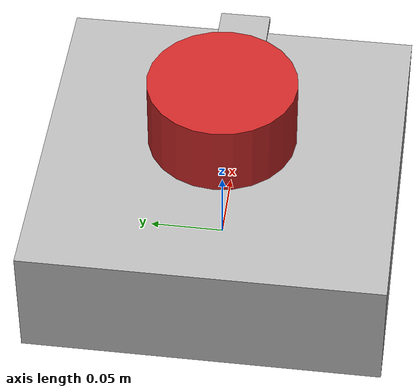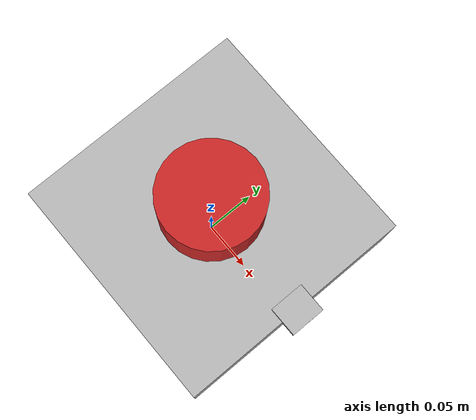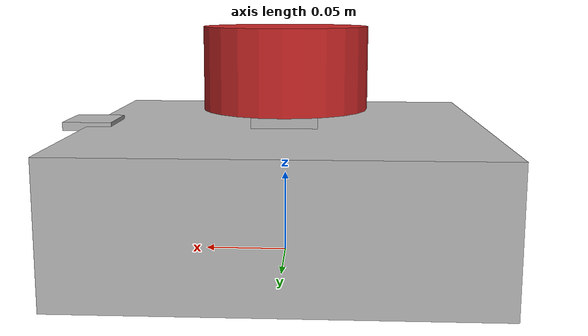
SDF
<sdf version='1.7'>
  <model name='roboto'>
    <link name='base_link'>
      <inertial>
        <pose>0 -0 0.035318 0 -0 0</pose>
        <mass>2.58365</mass>
        <inertia>
          <ixx>0.0216867</ixx>
          <ixy>-3.8231e-34</ixy>
          <ixz>1.33564e-18</ixz>
          <iyy>0.0216867</iyy>
          <iyz>6.22731e-19</iyz>
          <izz>0.0287115</izz>
        </inertia>
      </inertial>
      <collision name='base_link_fixed_joint_lump__body_collision'>
        <pose>0 0 0.04015 0 -0 0</pose>
        <geometry>
          <box>
            <size>0.24 0.24 0.0803</size>
          </box>
        </geometry>
      </collision>
      <collision name='base_link_fixed_joint_lump__front_collision_1'>
        <pose>0.12 0 0.0803 0 -0 0</pose>
        <geometry>
          <box>
            <size>0.03 0.035 0.005</size>
          </box>
        </geometry>
      </collision>
      <collision name='base_link_fixed_joint_lump__support_collision_2'>
        <pose>0 0 0.0803 0 -0 0</pose>
        <geometry>
          <box>
            <size>0.04 0.04 0.02</size>
          </box>
        </geometry>
      </collision>
      <collision name='base_link_fixed_joint_lump__lidar_collision_3'>
        <pose>0 0 0.1153 0 -0 0</pose>
        <geometry>
          <cylinder>
            <length>0.05</length>
            <radius>0.05</radius>
          </cylinder>
        </geometry>
        <surface>
          <contact>
            <ode/>
          </contact>
          <friction>
            <ode/>
          </friction>
        </surface>
      </collision>
      <visual name='base_link_fixed_joint_lump__body_visual'>
        <pose>0 0 0.04015 0 -0 0</pose>
        <geometry>
          <box>
            <size>0.24 0.24 0.0803</size>
          </box>
        </geometry>
      </visual>
      <visual name='base_link_fixed_joint_lump__front_visual_1'>
        <pose>0.12 0 0.0803 0 -0 0</pose>
        <geometry>
          <box>
            <size>0.03 0.035 0.005</size>
          </box>
        </geometry>
      </visual>
      <visual name='base_link_fixed_joint_lump__support_visual_2'>
        <pose>0 0 0.0903 0 -0 0</pose>
        <geometry>
          <box>
            <size>0.04 0.04 0.02</size>
          </box>
        </geometry>
      </visual>
      <visual name='base_link_fixed_joint_lump__lidar_visual_3'>
        <pose>0 0 0.1153 0 -0 0</pose>
        <geometry>
          <cylinder>
            <length>0.05</length>
            <radius>0.05</radius>
          </cylinder>
        </geometry>
        <material>
          <script>
            <name>Gazebo/Red</name>
            <uri>file://media/materials/scripts/gazebo.material</uri>
          </script>
        </material>
      </visual>
      <sensor name='laser' type='ray'>
        <visualize>0</visualize>
        <update_rate>10</update_rate>
        <ray>
          <scan>
            <horizontal>
              <samples>360</samples>
              <min_angle>-3.14</min_angle>
              <max_angle>3.14</max_angle>
              <resolution>1</resolution>
            </horizontal>
          </scan>
          <range>
            <min>0.3</min>
            <max>10</max>
          </range>
        </ray>
        <plugin name='laser_controller' filename='libgazebo_ros_ray_sensor.so'>
          <ros>
            <argument>~/out:=scan</argument>
          </ros>
          <output_type>sensor_msgs/LaserScan</output_type>
          <frame_name>lidar</frame_name>
        </plugin>
        <pose>0 0 0.1003 0 -0 0</pose>
      </sensor>
    </link>
    <joint name='wheel_1_joint' type='revolute'>
      <pose relative_to='base_link'>0.135 -0.135 0.015 0 0 -2.35619</pose>
      <parent>base_link</parent>
      <child>wheel_1_link</child>
      <axis>
        <xyz>0 1 0</xyz>
        <limit>
          <effort>100</effort>
          <velocity>100</velocity>
          <lower>-1e+16</lower>
          <upper>1e+16</upper>
        </limit>
        <dynamics>
          <damping>1</damping>
          <friction>3</friction>
          <spring_reference>0</spring_reference>
          <spring_stiffness>0</spring_stiffness>
        </dynamics>
      </axis>
    </joint>
    <link name='wheel_1_link'>
      <pose relative_to='wheel_1_joint'>0 0 0 0 -0 0</pose>
      <inertial>
        <pose>0 -0.011 0 0 -0 0</pose>
        <mass>0.25</mass>
        <inertia>
          <ixx>0.00031</ixx>
          <ixy>0</ixy>
          <ixz>0</ixz>
          <iyy>0.0005</iyy>
          <iyz>0</iyz>
          <izz>0.00031</izz>
        </inertia>
      </inertial>
      <collision name='wheel_1_link_collision'>
        <pose>0 0 0 0 -0 0</pose>
        <geometry>
          <mesh>
            <scale>1 1 1</scale>
            <uri>model://roboto/robot_description/meshes/STL/omni_wheel/omni_wheel.stl</uri>
          </mesh>
        </geometry>
        <surface>
          <contact>
            <ode/>
          </contact>
          <friction>
            <ode>
              <mu>0.8</mu>
              <mu2>0.8</mu2>
            </ode>
          </friction>
        </surface>
      </collision>
      <self_collide>0</self_collide>
    </link>
    <joint name='r10_F_roller_joint' type='revolute'>
      <pose relative_to='wheel_1_link'>-0.022885 0.006 -0.007436 1.25664 -0 1.5708</pose>
      <parent>wheel_1_link</parent>
      <child>r10_F_roller_link</child>
      <axis>
        <xyz>0 1 0</xyz>
        <limit>
          <lower>-1e+16</lower>
          <upper>1e+16</upper>
        </limit>
        <dynamics>
          <damping>0.5</damping>
          <friction>1</friction>
          <spring_reference>0</spring_reference>
          <spring_stiffness>0</spring_stiffness>
        </dynamics>
      </axis>
    </joint>
    <link name='r10_F_roller_link'>
      <pose relative_to='r10_F_roller_joint'>0 0 0 0 -0 0</pose>
      <inertial>
        <pose>0 0 0 0 -0 0</pose>
        <mass>0.009</mass>
        <inertia>
          <ixx>1.257e-06</ixx>
          <ixy>0</ixy>
          <ixz>0</ixz>
          <iyy>3.42e-07</iyy>
          <iyz>0</iyz>
          <izz>1.257e-06</izz>
        </inertia>
      </inertial>
      <collision name='r10_F_roller_link_collision'>
        <pose>0 0 0 0 -0 0</pose>
        <geometry>
          <mesh>
            <scale>1 1 1</scale>
            <uri>model://roboto/robot_description/meshes/STL/roller/roller.stl</uri>
          </mesh>
        </geometry>
      </collision>
    </link>
    <joint name='r1_F_roller_joint' type='revolute'>
      <pose relative_to='wheel_1_link'>0 -0.006 0.024063 0 -0 1.5708</pose>
      <parent>wheel_1_link</parent>
      <child>r1_F_roller_link</child>
      <axis>
        <xyz>0 1 0</xyz>
        <limit>
          <lower>-1e+16</lower>
          <upper>1e+16</upper>
        </limit>
        <dynamics>
          <damping>0.5</damping>
          <friction>1</friction>
          <spring_reference>0</spring_reference>
          <spring_stiffness>0</spring_stiffness>
        </dynamics>
      </axis>
    </joint>
    <link name='r1_F_roller_link'>
      <pose relative_to='r1_F_roller_joint'>0 0 0 0 -0 0</pose>
      <inertial>
        <pose>0 0 0 0 -0 0</pose>
        <mass>0.009</mass>
        <inertia>
          <ixx>1.257e-06</ixx>
          <ixy>0</ixy>
          <ixz>0</ixz>
          <iyy>3.42e-07</iyy>
          <iyz>0</iyz>
          <izz>1.257e-06</izz>
        </inertia>
      </inertial>
      <collision name='r1_F_roller_link_collision'>
        <pose>0 0 0 0 -0 0</pose>
        <geometry>
          <mesh>
            <scale>1 1 1</scale>
            <uri>model://roboto/robot_description/meshes/STL/roller/roller.stl</uri>
          </mesh>
        </geometry>
      </collision>
    </link>
    <joint name='r2_F_roller_joint' type='revolute'>
      <pose relative_to='wheel_1_link'>-0.022885 -0.006 0.007436 -1.25664 -0 1.5708</pose>
      <parent>wheel_1_link</parent>
      <child>r2_F_roller_link</child>
      <axis>
        <xyz>0 1 0</xyz>
        <limit>
          <lower>-1e+16</lower>
          <upper>1e+16</upper>
        </limit>
        <dynamics>
          <damping>0.5</damping>
          <friction>1</friction>
          <spring_reference>0</spring_reference>
          <spring_stiffness>0</spring_stiffness>
        </dynamics>
      </axis>
    </joint>
    <link name='r2_F_roller_link'>
      <pose relative_to='r2_F_roller_joint'>0 0 0 0 -0 0</pose>
      <inertial>
        <pose>0 0 0 0 -0 0</pose>
        <mass>0.009</mass>
        <inertia>
          <ixx>1.257e-06</ixx>
          <ixy>0</ixy>
          <ixz>0</ixz>
          <iyy>3.42e-07</iyy>
          <iyz>0</iyz>
          <izz>1.257e-06</izz>
        </inertia>
      </inertial>
      <collision name='r2_F_roller_link_collision'>
        <pose>0 0 0 0 -0 0</pose>
        <geometry>
          <mesh>
            <scale>1 1 1</scale>
            <uri>model://roboto/robot_description/meshes/STL/roller/roller.stl</uri>
          </mesh>
        </geometry>
      </collision>
    </link>
    <joint name='r3_F_roller_joint' type='revolute'>
      <pose relative_to='wheel_1_link'>-0.014144 -0.006 -0.019467 -2.51227 -0 1.5708</pose>
      <parent>wheel_1_link</parent>
      <child>r3_F_roller_link</child>
      <axis>
        <xyz>0 1 0</xyz>
        <limit>
          <lower>-1e+16</lower>
          <upper>1e+16</upper>
        </limit>
        <dynamics>
          <damping>0.5</damping>
          <friction>1</friction>
          <spring_reference>0</spring_reference>
          <spring_stiffness>0</spring_stiffness>
        </dynamics>
      </axis>
    </joint>
    <link name='r3_F_roller_link'>
      <pose relative_to='r3_F_roller_joint'>0 0 0 0 -0 0</pose>
      <inertial>
        <pose>0 0 0 0 -0 0</pose>
        <mass>0.009</mass>
        <inertia>
          <ixx>1.257e-06</ixx>
          <ixy>0</ixy>
          <ixz>0</ixz>
          <iyy>3.42e-07</iyy>
          <iyz>0</iyz>
          <izz>1.257e-06</izz>
        </inertia>
      </inertial>
      <collision name='r3_F_roller_link_collision'>
        <pose>0 0 0 0 -0 0</pose>
        <geometry>
          <mesh>
            <scale>1 1 1</scale>
            <uri>model://roboto/robot_description/meshes/STL/roller/roller.stl</uri>
          </mesh>
        </geometry>
      </collision>
    </link>
    <joint name='r4_F_roller_joint' type='revolute'>
      <pose relative_to='wheel_1_link'>0.014144 -0.006 -0.019467 2.51327 -0 1.5708</pose>
      <parent>wheel_1_link</parent>
      <child>r4_F_roller_link</child>
      <axis>
        <xyz>0 1 0</xyz>
        <limit>
          <lower>-1e+16</lower>
          <upper>1e+16</upper>
        </limit>
        <dynamics>
          <damping>0.5</damping>
          <friction>1</friction>
          <spring_reference>0</spring_reference>
          <spring_stiffness>0</spring_stiffness>
        </dynamics>
      </axis>
    </joint>
    <link name='r4_F_roller_link'>
      <pose relative_to='r4_F_roller_joint'>0 0 0 0 -0 0</pose>
      <inertial>
        <pose>0 0 0 0 -0 0</pose>
        <mass>0.009</mass>
        <inertia>
          <ixx>1.257e-06</ixx>
          <ixy>0</ixy>
          <ixz>0</ixz>
          <iyy>3.42e-07</iyy>
          <iyz>0</iyz>
          <izz>1.257e-06</izz>
        </inertia>
      </inertial>
      <collision name='r4_F_roller_link_collision'>
        <pose>0 0 0 0 -0 0</pose>
        <geometry>
          <mesh>
            <scale>1 1 1</scale>
            <uri>model://roboto/robot_description/meshes/STL/roller/roller.stl</uri>
          </mesh>
        </geometry>
      </collision>
    </link>
    <joint name='r5_F_roller_joint' type='revolute'>
      <pose relative_to='wheel_1_link'>0.022885 -0.006 0.007436 1.25664 -0 1.5708</pose>
      <parent>wheel_1_link</parent>
      <child>r5_F_roller_link</child>
      <axis>
        <xyz>0 1 0</xyz>
        <limit>
          <lower>-1e+16</lower>
          <upper>1e+16</upper>
        </limit>
        <dynamics>
          <damping>0.5</damping>
          <friction>1</friction>
          <spring_reference>0</spring_reference>
          <spring_stiffness>0</spring_stiffness>
        </dynamics>
      </axis>
    </joint>
    <link name='r5_F_roller_link'>
      <pose relative_to='r5_F_roller_joint'>0 0 0 0 -0 0</pose>
      <inertial>
        <pose>0 0 0 0 -0 0</pose>
        <mass>0.009</mass>
        <inertia>
          <ixx>1.257e-06</ixx>
          <ixy>0</ixy>
          <ixz>0</ixz>
          <iyy>3.42e-07</iyy>
          <iyz>0</iyz>
          <izz>1.257e-06</izz>
        </inertia>
      </inertial>
      <collision name='r5_F_roller_link_collision'>
        <pose>0 0 0 0 -0 0</pose>
        <geometry>
          <mesh>
            <scale>1 1 1</scale>
            <uri>model://roboto/robot_description/meshes/STL/roller/roller.stl</uri>
          </mesh>
        </geometry>
      </collision>
    </link>
    <joint name='r6_F_roller_joint' type='revolute'>
      <pose relative_to='wheel_1_link'>0 0.006 -0.024063 0 -0 1.5708</pose>
      <parent>wheel_1_link</parent>
      <child>r6_F_roller_link</child>
      <axis>
        <xyz>0 1 0</xyz>
        <limit>
          <lower>-1e+16</lower>
          <upper>1e+16</upper>
        </limit>
        <dynamics>
          <damping>0.5</damping>
          <friction>1</friction>
          <spring_reference>0</spring_reference>
          <spring_stiffness>0</spring_stiffness>
        </dynamics>
      </axis>
    </joint>
    <link name='r6_F_roller_link'>
      <pose relative_to='r6_F_roller_joint'>0 0 0 0 -0 0</pose>
      <inertial>
        <pose>0 0 0 0 -0 0</pose>
        <mass>0.009</mass>
        <inertia>
          <ixx>1.257e-06</ixx>
          <ixy>0</ixy>
          <ixz>0</ixz>
          <iyy>3.42e-07</iyy>
          <iyz>0</iyz>
          <izz>1.257e-06</izz>
        </inertia>
      </inertial>
      <collision name='r6_F_roller_link_collision'>
        <pose>0 0 0 0 -0 0</pose>
        <geometry>
          <mesh>
            <scale>1 1 1</scale>
            <uri>model://roboto/robot_description/meshes/STL/roller/roller.stl</uri>
          </mesh>
        </geometry>
      </collision>
    </link>
    <joint name='r7_F_roller_joint' type='revolute'>
      <pose relative_to='wheel_1_link'>0.022885 0.006 -0.007436 -1.25664 -0 1.5708</pose>
      <parent>wheel_1_link</parent>
      <child>r7_F_roller_link</child>
      <axis>
        <xyz>0 1 0</xyz>
        <limit>
          <lower>-1e+16</lower>
          <upper>1e+16</upper>
        </limit>
        <dynamics>
          <damping>0.5</damping>
          <friction>1</friction>
          <spring_reference>0</spring_reference>
          <spring_stiffness>0</spring_stiffness>
        </dynamics>
      </axis>
    </joint>
    <link name='r7_F_roller_link'>
      <pose relative_to='r7_F_roller_joint'>0 0 0 0 -0 0</pose>
      <inertial>
        <pose>0 0 0 0 -0 0</pose>
        <mass>0.009</mass>
        <inertia>
          <ixx>1.257e-06</ixx>
          <ixy>0</ixy>
          <ixz>0</ixz>
          <iyy>3.42e-07</iyy>
          <iyz>0</iyz>
          <izz>1.257e-06</izz>
        </inertia>
      </inertial>
      <collision name='r7_F_roller_link_collision'>
        <pose>0 0 0 0 -0 0</pose>
        <geometry>
          <mesh>
            <scale>1 1 1</scale>
            <uri>model://roboto/robot_description/meshes/STL/roller/roller.stl</uri>
          </mesh>
        </geometry>
      </collision>
    </link>
    <joint name='r8_F_roller_joint' type='revolute'>
      <pose relative_to='wheel_1_link'>0.014144 0.006 0.019467 -2.51227 -0 1.5708</pose>
      <parent>wheel_1_link</parent>
      <child>r8_F_roller_link</child>
      <axis>
        <xyz>0 1 0</xyz>
        <limit>
          <lower>-1e+16</lower>
          <upper>1e+16</upper>
        </limit>
        <dynamics>
          <damping>0.5</damping>
          <friction>1</friction>
          <spring_reference>0</spring_reference>
          <spring_stiffness>0</spring_stiffness>
        </dynamics>
      </axis>
    </joint>
    <link name='r8_F_roller_link'>
      <pose relative_to='r8_F_roller_joint'>0 0 0 0 -0 0</pose>
      <inertial>
        <pose>0 0 0 0 -0 0</pose>
        <mass>0.009</mass>
        <inertia>
          <ixx>1.257e-06</ixx>
          <ixy>0</ixy>
          <ixz>0</ixz>
          <iyy>3.42e-07</iyy>
          <iyz>0</iyz>
          <izz>1.257e-06</izz>
        </inertia>
      </inertial>
      <collision name='r8_F_roller_link_collision'>
        <pose>0 0 0 0 -0 0</pose>
        <geometry>
          <mesh>
            <scale>1 1 1</scale>
            <uri>model://roboto/robot_description/meshes/STL/roller/roller.stl</uri>
          </mesh>
        </geometry>
      </collision>
    </link>
    <joint name='r9_F_roller_joint' type='revolute'>
      <pose relative_to='wheel_1_link'>-0.014144 0.006 0.019467 2.51327 -0 1.5708</pose>
      <parent>wheel_1_link</parent>
      <child>r9_F_roller_link</child>
      <axis>
        <xyz>0 1 0</xyz>
        <limit>
          <lower>-1e+16</lower>
          <upper>1e+16</upper>
        </limit>
        <dynamics>
          <damping>0.5</damping>
          <friction>1</friction>
          <spring_reference>0</spring_reference>
          <spring_stiffness>0</spring_stiffness>
        </dynamics>
      </axis>
    </joint>
    <link name='r9_F_roller_link'>
      <pose relative_to='r9_F_roller_joint'>0 0 0 0 -0 0</pose>
      <inertial>
        <pose>0 0 0 0 -0 0</pose>
        <mass>0.009</mass>
        <inertia>
          <ixx>1.257e-06</ixx>
          <ixy>0</ixy>
          <ixz>0</ixz>
          <iyy>3.42e-07</iyy>
          <iyz>0</iyz>
          <izz>1.257e-06</izz>
        </inertia>
      </inertial>
      <collision name='r9_F_roller_link_collision'>
        <pose>0 0 0 0 -0 0</pose>
        <geometry>
          <mesh>
            <scale>1 1 1</scale>
            <uri>model://roboto/robot_description/meshes/STL/roller/roller.stl</uri>
          </mesh>
        </geometry>
      </collision>
    </link>
    <joint name='wheel_2_joint' type='revolute'>
      <pose relative_to='base_link'>0.135 0.135 0.015 0 0 -0.785398</pose>
      <parent>base_link</parent>
      <child>wheel_2_link</child>
      <axis>
        <xyz>0 1 0</xyz>
        <limit>
          <effort>100</effort>
          <velocity>100</velocity>
          <lower>-1e+16</lower>
          <upper>1e+16</upper>
        </limit>
        <dynamics>
          <damping>1</damping>
          <friction>3</friction>
          <spring_reference>0</spring_reference>
          <spring_stiffness>0</spring_stiffness>
        </dynamics>
      </axis>
    </joint>
    <link name='wheel_2_link'>
      <pose relative_to='wheel_2_joint'>0 0 0 0 -0 0</pose>
      <inertial>
        <pose>0 -0.011 0 0 -0 0</pose>
        <mass>0.25</mass>
        <inertia>
          <ixx>0.00031</ixx>
          <ixy>0</ixy>
          <ixz>0</ixz>
          <iyy>0.0005</iyy>
          <iyz>0</iyz>
          <izz>0.00031</izz>
        </inertia>
      </inertial>
      <collision name='wheel_2_link_collision'>
        <pose>0 0 0 0 -0 0</pose>
        <geometry>
          <mesh>
            <scale>1 1 1</scale>
            <uri>model://roboto/robot_description/meshes/STL/omni_wheel/omni_wheel.stl</uri>
          </mesh>
        </geometry>
        <surface>
          <contact>
            <ode/>
          </contact>
          <friction>
            <ode>
              <mu>0.8</mu>
              <mu2>0.8</mu2>
            </ode>
          </friction>
        </surface>
      </collision>
      <self_collide>0</self_collide>
    </link>
    <joint name='r10_S_roller_joint' type='revolute'>
      <pose relative_to='wheel_2_link'>-0.022885 0.006 -0.007436 1.25664 -0 1.5708</pose>
      <parent>wheel_2_link</parent>
      <child>r10_S_roller_link</child>
      <axis>
        <xyz>0 1 0</xyz>
        <limit>
          <lower>-1e+16</lower>
          <upper>1e+16</upper>
        </limit>
        <dynamics>
          <damping>0.5</damping>
          <friction>1</friction>
          <spring_reference>0</spring_reference>
          <spring_stiffness>0</spring_stiffness>
        </dynamics>
      </axis>
    </joint>
    <link name='r10_S_roller_link'>
      <pose relative_to='r10_S_roller_joint'>0 0 0 0 -0 0</pose>
      <inertial>
        <pose>0 0 0 0 -0 0</pose>
        <mass>0.009</mass>
        <inertia>
          <ixx>1.257e-06</ixx>
          <ixy>0</ixy>
          <ixz>0</ixz>
          <iyy>3.42e-07</iyy>
          <iyz>0</iyz>
          <izz>1.257e-06</izz>
        </inertia>
      </inertial>
      <collision name='r10_S_roller_link_collision'>
        <pose>0 0 0 0 -0 0</pose>
        <geometry>
          <mesh>
            <scale>1 1 1</scale>
            <uri>model://roboto/robot_description/meshes/STL/roller/roller.stl</uri>
          </mesh>
        </geometry>
      </collision>
    </link>
    <joint name='r1_S_roller_joint' type='revolute'>
      <pose relative_to='wheel_2_link'>0 -0.006 0.024063 0 -0 1.5708</pose>
      <parent>wheel_2_link</parent>
      <child>r1_S_roller_link</child>
      <axis>
        <xyz>0 1 0</xyz>
        <limit>
          <lower>-1e+16</lower>
          <upper>1e+16</upper>
        </limit>
        <dynamics>
          <damping>0.5</damping>
          <friction>1</friction>
          <spring_reference>0</spring_reference>
          <spring_stiffness>0</spring_stiffness>
        </dynamics>
      </axis>
    </joint>
    <link name='r1_S_roller_link'>
      <pose relative_to='r1_S_roller_joint'>0 0 0 0 -0 0</pose>
      <inertial>
        <pose>0 0 0 0 -0 0</pose>
        <mass>0.009</mass>
        <inertia>
          <ixx>1.257e-06</ixx>
          <ixy>0</ixy>
          <ixz>0</ixz>
          <iyy>3.42e-07</iyy>
          <iyz>0</iyz>
          <izz>1.257e-06</izz>
        </inertia>
      </inertial>
      <collision name='r1_S_roller_link_collision'>
        <pose>0 0 0 0 -0 0</pose>
        <geometry>
          <mesh>
            <scale>1 1 1</scale>
            <uri>model://roboto/robot_description/meshes/STL/roller/roller.stl</uri>
          </mesh>
        </geometry>
      </collision>
    </link>
    <joint name='r2_S_roller_joint' type='revolute'>
      <pose relative_to='wheel_2_link'>-0.022885 -0.006 0.007436 -1.25664 -0 1.5708</pose>
      <parent>wheel_2_link</parent>
      <child>r2_S_roller_link</child>
      <axis>
        <xyz>0 1 0</xyz>
        <limit>
          <lower>-1e+16</lower>
          <upper>1e+16</upper>
        </limit>
        <dynamics>
          <damping>0.5</damping>
          <friction>1</friction>
          <spring_reference>0</spring_reference>
          <spring_stiffness>0</spring_stiffness>
        </dynamics>
      </axis>
    </joint>
    <link name='r2_S_roller_link'>
      <pose relative_to='r2_S_roller_joint'>0 0 0 0 -0 0</pose>
      <inertial>
        <pose>0 0 0 0 -0 0</pose>
        <mass>0.009</mass>
        <inertia>
          <ixx>1.257e-06</ixx>
          <ixy>0</ixy>
          <ixz>0</ixz>
          <iyy>3.42e-07</iyy>
          <iyz>0</iyz>
          <izz>1.257e-06</izz>
        </inertia>
      </inertial>
      <collision name='r2_S_roller_link_collision'>
        <pose>0 0 0 0 -0 0</pose>
        <geometry>
          <mesh>
            <scale>1 1 1</scale>
            <uri>model://roboto/robot_description/meshes/STL/roller/roller.stl</uri>
          </mesh>
        </geometry>
      </collision>
    </link>
    <joint name='r3_S_roller_joint' type='revolute'>
      <pose relative_to='wheel_2_link'>-0.014144 -0.006 -0.019467 -2.51227 -0 1.5708</pose>
      <parent>wheel_2_link</parent>
      <child>r3_S_roller_link</child>
      <axis>
        <xyz>0 1 0</xyz>
        <limit>
          <lower>-1e+16</lower>
          <upper>1e+16</upper>
        </limit>
        <dynamics>
          <damping>0.5</damping>
          <friction>1</friction>
          <spring_reference>0</spring_reference>
          <spring_stiffness>0</spring_stiffness>
        </dynamics>
      </axis>
    </joint>
    <link name='r3_S_roller_link'>
      <pose relative_to='r3_S_roller_joint'>0 0 0 0 -0 0</pose>
      <inertial>
        <pose>0 0 0 0 -0 0</pose>
        <mass>0.009</mass>
        <inertia>
          <ixx>1.257e-06</ixx>
          <ixy>0</ixy>
          <ixz>0</ixz>
          <iyy>3.42e-07</iyy>
          <iyz>0</iyz>
          <izz>1.257e-06</izz>
        </inertia>
      </inertial>
      <collision name='r3_S_roller_link_collision'>
        <pose>0 0 0 0 -0 0</pose>
        <geometry>
          <mesh>
            <scale>1 1 1</scale>
            <uri>model://roboto/robot_description/meshes/STL/roller/roller.stl</uri>
          </mesh>
        </geometry>
      </collision>
    </link>
    <joint name='r4_S_roller_joint' type='revolute'>
      <pose relative_to='wheel_2_link'>0.014144 -0.006 -0.019467 2.51327 -0 1.5708</pose>
      <parent>wheel_2_link</parent>
      <child>r4_S_roller_link</child>
      <axis>
        <xyz>0 1 0</xyz>
        <limit>
          <lower>-1e+16</lower>
          <upper>1e+16</upper>
        </limit>
        <dynamics>
          <damping>0.5</damping>
          <friction>1</friction>
          <spring_reference>0</spring_reference>
          <spring_stiffness>0</spring_stiffness>
        </dynamics>
      </axis>
    </joint>
    <link name='r4_S_roller_link'>
      <pose relative_to='r4_S_roller_joint'>0 0 0 0 -0 0</pose>
      <inertial>
        <pose>0 0 0 0 -0 0</pose>
        <mass>0.009</mass>
        <inertia>
          <ixx>1.257e-06</ixx>
          <ixy>0</ixy>
          <ixz>0</ixz>
          <iyy>3.42e-07</iyy>
          <iyz>0</iyz>
          <izz>1.257e-06</izz>
        </inertia>
      </inertial>
      <collision name='r4_S_roller_link_collision'>
        <pose>0 0 0 0 -0 0</pose>
        <geometry>
          <mesh>
            <scale>1 1 1</scale>
            <uri>model://roboto/robot_description/meshes/STL/roller/roller.stl</uri>
          </mesh>
        </geometry>
      </collision>
    </link>
    <joint name='r5_S_roller_joint' type='revolute'>
      <pose relative_to='wheel_2_link'>0.022885 -0.006 0.007436 1.25664 -0 1.5708</pose>
      <parent>wheel_2_link</parent>
      <child>r5_S_roller_link</child>
      <axis>
        <xyz>0 1 0</xyz>
        <limit>
          <lower>-1e+16</lower>
          <upper>1e+16</upper>
        </limit>
        <dynamics>
          <damping>0.5</damping>
          <friction>1</friction>
          <spring_reference>0</spring_reference>
          <spring_stiffness>0</spring_stiffness>
        </dynamics>
      </axis>
    </joint>
    <link name='r5_S_roller_link'>
      <pose relative_to='r5_S_roller_joint'>0 0 0 0 -0 0</pose>
      <inertial>
        <pose>0 0 0 0 -0 0</pose>
        <mass>0.009</mass>
        <inertia>
          <ixx>1.257e-06</ixx>
          <ixy>0</ixy>
          <ixz>0</ixz>
          <iyy>3.42e-07</iyy>
          <iyz>0</iyz>
          <izz>1.257e-06</izz>
        </inertia>
      </inertial>
      <collision name='r5_S_roller_link_collision'>
        <pose>0 0 0 0 -0 0</pose>
        <geometry>
          <mesh>
            <scale>1 1 1</scale>
            <uri>model://roboto/robot_description/meshes/STL/roller/roller.stl</uri>
          </mesh>
        </geometry>
      </collision>
    </link>
    <joint name='r6_S_roller_joint' type='revolute'>
      <pose relative_to='wheel_2_link'>0 0.006 -0.024063 0 -0 1.5708</pose>
      <parent>wheel_2_link</parent>
      <child>r6_S_roller_link</child>
      <axis>
        <xyz>0 1 0</xyz>
        <limit>
          <lower>-1e+16</lower>
          <upper>1e+16</upper>
        </limit>
        <dynamics>
          <damping>0.5</damping>
          <friction>1</friction>
          <spring_reference>0</spring_reference>
          <spring_stiffness>0</spring_stiffness>
        </dynamics>
      </axis>
    </joint>
    <link name='r6_S_roller_link'>
      <pose relative_to='r6_S_roller_joint'>0 0 0 0 -0 0</pose>
      <inertial>
        <pose>0 0 0 0 -0 0</pose>
        <mass>0.009</mass>
        <inertia>
          <ixx>1.257e-06</ixx>
          <ixy>0</ixy>
          <ixz>0</ixz>
          <iyy>3.42e-07</iyy>
          <iyz>0</iyz>
          <izz>1.257e-06</izz>
        </inertia>
      </inertial>
      <collision name='r6_S_roller_link_collision'>
        <pose>0 0 0 0 -0 0</pose>
        <geometry>
          <mesh>
            <scale>1 1 1</scale>
            <uri>model://roboto/robot_description/meshes/STL/roller/roller.stl</uri>
          </mesh>
        </geometry>
      </collision>
    </link>
    <joint name='r7_S_roller_joint' type='revolute'>
      <pose relative_to='wheel_2_link'>0.022885 0.006 -0.007436 -1.25664 -0 1.5708</pose>
      <parent>wheel_2_link</parent>
      <child>r7_S_roller_link</child>
      <axis>
        <xyz>0 1 0</xyz>
        <limit>
          <lower>-1e+16</lower>
          <upper>1e+16</upper>
        </limit>
        <dynamics>
          <damping>0.5</damping>
          <friction>1</friction>
          <spring_reference>0</spring_reference>
          <spring_stiffness>0</spring_stiffness>
        </dynamics>
      </axis>
    </joint>
    <link name='r7_S_roller_link'>
      <pose relative_to='r7_S_roller_joint'>0 0 0 0 -0 0</pose>
      <inertial>
        <pose>0 0 0 0 -0 0</pose>
        <mass>0.009</mass>
        <inertia>
          <ixx>1.257e-06</ixx>
          <ixy>0</ixy>
          <ixz>0</ixz>
          <iyy>3.42e-07</iyy>
          <iyz>0</iyz>
          <izz>1.257e-06</izz>
        </inertia>
      </inertial>
      <collision name='r7_S_roller_link_collision'>
        <pose>0 0 0 0 -0 0</pose>
        <geometry>
          <mesh>
            <scale>1 1 1</scale>
            <uri>model://roboto/robot_description/meshes/STL/roller/roller.stl</uri>
          </mesh>
        </geometry>
      </collision>
    </link>
    <joint name='r8_S_roller_joint' type='revolute'>
      <pose relative_to='wheel_2_link'>0.014144 0.006 0.019467 -2.51227 -0 1.5708</pose>
      <parent>wheel_2_link</parent>
      <child>r8_S_roller_link</child>
      <axis>
        <xyz>0 1 0</xyz>
        <limit>
          <lower>-1e+16</lower>
          <upper>1e+16</upper>
        </limit>
        <dynamics>
          <damping>0.5</damping>
          <friction>1</friction>
          <spring_reference>0</spring_reference>
          <spring_stiffness>0</spring_stiffness>
        </dynamics>
      </axis>
    </joint>
    <link name='r8_S_roller_link'>
      <pose relative_to='r8_S_roller_joint'>0 0 0 0 -0 0</pose>
      <inertial>
        <pose>0 0 0 0 -0 0</pose>
        <mass>0.009</mass>
        <inertia>
          <ixx>1.257e-06</ixx>
          <ixy>0</ixy>
          <ixz>0</ixz>
          <iyy>3.42e-07</iyy>
          <iyz>0</iyz>
          <izz>1.257e-06</izz>
        </inertia>
      </inertial>
      <collision name='r8_S_roller_link_collision'>
        <pose>0 0 0 0 -0 0</pose>
        <geometry>
          <mesh>
            <scale>1 1 1</scale>
            <uri>model://roboto/robot_description/meshes/STL/roller/roller.stl</uri>
          </mesh>
        </geometry>
      </collision>
    </link>
    <joint name='r9_S_roller_joint' type='revolute'>
      <pose relative_to='wheel_2_link'>-0.014144 0.006 0.019467 2.51327 -0 1.5708</pose>
      <parent>wheel_2_link</parent>
      <child>r9_S_roller_link</child>
      <axis>
        <xyz>0 1 0</xyz>
        <limit>
          <lower>-1e+16</lower>
          <upper>1e+16</upper>
        </limit>
        <dynamics>
          <damping>0.5</damping>
          <friction>1</friction>
          <spring_reference>0</spring_reference>
          <spring_stiffness>0</spring_stiffness>
        </dynamics>
      </axis>
    </joint>
    <link name='r9_S_roller_link'>
      <pose relative_to='r9_S_roller_joint'>0 0 0 0 -0 0</pose>
      <inertial>
        <pose>0 0 0 0 -0 0</pose>
        <mass>0.009</mass>
        <inertia>
          <ixx>1.257e-06</ixx>
          <ixy>0</ixy>
          <ixz>0</ixz>
          <iyy>3.42e-07</iyy>
          <iyz>0</iyz>
          <izz>1.257e-06</izz>
        </inertia>
      </inertial>
      <collision name='r9_S_roller_link_collision'>
        <pose>0 0 0 0 -0 0</pose>
        <geometry>
          <mesh>
            <scale>1 1 1</scale>
            <uri>model://roboto/robot_description/meshes/STL/roller/roller.stl</uri>
          </mesh>
        </geometry>
      </collision>
    </link>
    <joint name='wheel_3_joint' type='revolute'>
      <pose relative_to='base_link'>-0.135 0.135 0.015 0 -0 0.785398</pose>
      <parent>base_link</parent>
      <child>wheel_3_link</child>
      <axis>
        <xyz>0 1 0</xyz>
        <limit>
          <effort>100</effort>
          <velocity>100</velocity>
          <lower>-1e+16</lower>
          <upper>1e+16</upper>
        </limit>
        <dynamics>
          <damping>1</damping>
          <friction>3</friction>
          <spring_reference>0</spring_reference>
          <spring_stiffness>0</spring_stiffness>
        </dynamics>
      </axis>
    </joint>
    <link name='wheel_3_link'>
      <pose relative_to='wheel_3_joint'>0 0 0 0 -0 0</pose>
      <inertial>
        <pose>0 -0.011 0 0 -0 0</pose>
        <mass>0.25</mass>
        <inertia>
          <ixx>0.00031</ixx>
          <ixy>0</ixy>
          <ixz>0</ixz>
          <iyy>0.0005</iyy>
          <iyz>0</iyz>
          <izz>0.00031</izz>
        </inertia>
      </inertial>
      <collision name='wheel_3_link_collision'>
        <pose>0 0 0 0 -0 0</pose>
        <geometry>
          <mesh>
            <scale>1 1 1</scale>
            <uri>model://roboto/robot_description/meshes/STL/omni_wheel/omni_wheel.stl</uri>
          </mesh>
        </geometry>
        <surface>
          <contact>
            <ode/>
          </contact>
          <friction>
            <ode>
              <mu>0.8</mu>
              <mu2>0.8</mu2>
            </ode>
          </friction>
        </surface>
      </collision>
      <self_collide>0</self_collide>
    </link>
    <joint name='r10_T_roller_joint' type='revolute'>
      <pose relative_to='wheel_3_link'>-0.022885 0.006 -0.007436 1.25664 -0 1.5708</pose>
      <parent>wheel_3_link</parent>
      <child>r10_T_roller_link</child>
      <axis>
        <xyz>0 1 0</xyz>
        <limit>
          <lower>-1e+16</lower>
          <upper>1e+16</upper>
        </limit>
        <dynamics>
          <damping>0.5</damping>
          <friction>1</friction>
          <spring_reference>0</spring_reference>
          <spring_stiffness>0</spring_stiffness>
        </dynamics>
      </axis>
    </joint>
    <link name='r10_T_roller_link'>
      <pose relative_to='r10_T_roller_joint'>0 0 0 0 -0 0</pose>
      <inertial>
        <pose>0 0 0 0 -0 0</pose>
        <mass>0.009</mass>
        <inertia>
          <ixx>1.257e-06</ixx>
          <ixy>0</ixy>
          <ixz>0</ixz>
          <iyy>3.42e-07</iyy>
          <iyz>0</iyz>
          <izz>1.257e-06</izz>
        </inertia>
      </inertial>
      <collision name='r10_T_roller_link_collision'>
        <pose>0 0 0 0 -0 0</pose>
        <geometry>
          <mesh>
            <scale>1 1 1</scale>
            <uri>model://roboto/robot_description/meshes/STL/roller/roller.stl</uri>
          </mesh>
        </geometry>
      </collision>
    </link>
    <joint name='r1_T_roller_joint' type='revolute'>
      <pose relative_to='wheel_3_link'>0 -0.006 0.024063 0 -0 1.5708</pose>
      <parent>wheel_3_link</parent>
      <child>r1_T_roller_link</child>
      <axis>
        <xyz>0 1 0</xyz>
        <limit>
          <lower>-1e+16</lower>
          <upper>1e+16</upper>
        </limit>
        <dynamics>
          <damping>0.5</damping>
          <friction>1</friction>
          <spring_reference>0</spring_reference>
          <spring_stiffness>0</spring_stiffness>
        </dynamics>
      </axis>
    </joint>
    <link name='r1_T_roller_link'>
      <pose relative_to='r1_T_roller_joint'>0 0 0 0 -0 0</pose>
      <inertial>
        <pose>0 0 0 0 -0 0</pose>
        <mass>0.009</mass>
        <inertia>
          <ixx>1.257e-06</ixx>
          <ixy>0</ixy>
          <ixz>0</ixz>
          <iyy>3.42e-07</iyy>
          <iyz>0</iyz>
          <izz>1.257e-06</izz>
        </inertia>
      </inertial>
      <collision name='r1_T_roller_link_collision'>
        <pose>0 0 0 0 -0 0</pose>
        <geometry>
          <mesh>
            <scale>1 1 1</scale>
            <uri>model://roboto/robot_description/meshes/STL/roller/roller.stl</uri>
          </mesh>
        </geometry>
      </collision>
    </link>
    <joint name='r2_T_roller_joint' type='revolute'>
      <pose relative_to='wheel_3_link'>-0.022885 -0.006 0.007436 -1.25664 -0 1.5708</pose>
      <parent>wheel_3_link</parent>
      <child>r2_T_roller_link</child>
      <axis>
        <xyz>0 1 0</xyz>
        <limit>
          <lower>-1e+16</lower>
          <upper>1e+16</upper>
        </limit>
        <dynamics>
          <damping>0.5</damping>
          <friction>1</friction>
          <spring_reference>0</spring_reference>
          <spring_stiffness>0</spring_stiffness>
        </dynamics>
      </axis>
    </joint>
    <link name='r2_T_roller_link'>
      <pose relative_to='r2_T_roller_joint'>0 0 0 0 -0 0</pose>
      <inertial>
        <pose>0 0 0 0 -0 0</pose>
        <mass>0.009</mass>
        <inertia>
          <ixx>1.257e-06</ixx>
          <ixy>0</ixy>
          <ixz>0</ixz>
          <iyy>3.42e-07</iyy>
          <iyz>0</iyz>
          <izz>1.257e-06</izz>
        </inertia>
      </inertial>
      <collision name='r2_T_roller_link_collision'>
        <pose>0 0 0 0 -0 0</pose>
        <geometry>
          <mesh>
            <scale>1 1 1</scale>
            <uri>model://roboto/robot_description/meshes/STL/roller/roller.stl</uri>
          </mesh>
        </geometry>
      </collision>
    </link>
    <joint name='r3_T_roller_joint' type='revolute'>
      <pose relative_to='wheel_3_link'>-0.014144 -0.006 -0.019467 -2.51227 -0 1.5708</pose>
      <parent>wheel_3_link</parent>
      <child>r3_T_roller_link</child>
      <axis>
        <xyz>0 1 0</xyz>
        <limit>
          <lower>-1e+16</lower>
          <upper>1e+16</upper>
        </limit>
        <dynamics>
          <damping>0.5</damping>
          <friction>1</friction>
          <spring_reference>0</spring_reference>
          <spring_stiffness>0</spring_stiffness>
        </dynamics>
      </axis>
    </joint>
    <link name='r3_T_roller_link'>
      <pose relative_to='r3_T_roller_joint'>0 0 0 0 -0 0</pose>
      <inertial>
        <pose>0 0 0 0 -0 0</pose>
        <mass>0.009</mass>
        <inertia>
          <ixx>1.257e-06</ixx>
          <ixy>0</ixy>
          <ixz>0</ixz>
          <iyy>3.42e-07</iyy>
          <iyz>0</iyz>
          <izz>1.257e-06</izz>
        </inertia>
      </inertial>
      <collision name='r3_T_roller_link_collision'>
        <pose>0 0 0 0 -0 0</pose>
        <geometry>
          <mesh>
            <scale>1 1 1</scale>
            <uri>model://roboto/robot_description/meshes/STL/roller/roller.stl</uri>
          </mesh>
        </geometry>
      </collision>
    </link>
    <joint name='r4_T_roller_joint' type='revolute'>
      <pose relative_to='wheel_3_link'>0.014144 -0.006 -0.019467 2.51327 -0 1.5708</pose>
      <parent>wheel_3_link</parent>
      <child>r4_T_roller_link</child>
      <axis>
        <xyz>0 1 0</xyz>
        <limit>
          <lower>-1e+16</lower>
          <upper>1e+16</upper>
        </limit>
        <dynamics>
          <damping>0.5</damping>
          <friction>1</friction>
          <spring_reference>0</spring_reference>
          <spring_stiffness>0</spring_stiffness>
        </dynamics>
      </axis>
    </joint>
    <link name='r4_T_roller_link'>
      <pose relative_to='r4_T_roller_joint'>0 0 0 0 -0 0</pose>
      <inertial>
        <pose>0 0 0 0 -0 0</pose>
        <mass>0.009</mass>
        <inertia>
          <ixx>1.257e-06</ixx>
          <ixy>0</ixy>
          <ixz>0</ixz>
          <iyy>3.42e-07</iyy>
          <iyz>0</iyz>
          <izz>1.257e-06</izz>
        </inertia>
      </inertial>
      <collision name='r4_T_roller_link_collision'>
        <pose>0 0 0 0 -0 0</pose>
        <geometry>
          <mesh>
            <scale>1 1 1</scale>
            <uri>model://roboto/robot_description/meshes/STL/roller/roller.stl</uri>
          </mesh>
        </geometry>
      </collision>
    </link>
    <joint name='r5_T_roller_joint' type='revolute'>
      <pose relative_to='wheel_3_link'>0.022885 -0.006 0.007436 1.25664 -0 1.5708</pose>
      <parent>wheel_3_link</parent>
      <child>r5_T_roller_link</child>
      <axis>
        <xyz>0 1 0</xyz>
        <limit>
          <lower>-1e+16</lower>
          <upper>1e+16</upper>
        </limit>
        <dynamics>
          <damping>0.5</damping>
          <friction>1</friction>
          <spring_reference>0</spring_reference>
          <spring_stiffness>0</spring_stiffness>
        </dynamics>
      </axis>
    </joint>
    <link name='r5_T_roller_link'>
      <pose relative_to='r5_T_roller_joint'>0 0 0 0 -0 0</pose>
      <inertial>
        <pose>0 0 0 0 -0 0</pose>
        <mass>0.009</mass>
        <inertia>
          <ixx>1.257e-06</ixx>
          <ixy>0</ixy>
          <ixz>0</ixz>
          <iyy>3.42e-07</iyy>
          <iyz>0</iyz>
          <izz>1.257e-06</izz>
        </inertia>
      </inertial>
      <collision name='r5_T_roller_link_collision'>
        <pose>0 0 0 0 -0 0</pose>
        <geometry>
          <mesh>
            <scale>1 1 1</scale>
            <uri>model://roboto/robot_description/meshes/STL/roller/roller.stl</uri>
          </mesh>
        </geometry>
      </collision>
    </link>
    <joint name='r6_T_roller_joint' type='revolute'>
      <pose relative_to='wheel_3_link'>0 0.006 -0.024063 0 -0 1.5708</pose>
      <parent>wheel_3_link</parent>
      <child>r6_T_roller_link</child>
      <axis>
        <xyz>0 1 0</xyz>
        <limit>
          <lower>-1e+16</lower>
          <upper>1e+16</upper>
        </limit>
        <dynamics>
          <damping>0.5</damping>
          <friction>1</friction>
          <spring_reference>0</spring_reference>
          <spring_stiffness>0</spring_stiffness>
        </dynamics>
      </axis>
    </joint>
    <link name='r6_T_roller_link'>
      <pose relative_to='r6_T_roller_joint'>0 0 0 0 -0 0</pose>
      <inertial>
        <pose>0 0 0 0 -0 0</pose>
        <mass>0.009</mass>
        <inertia>
          <ixx>1.257e-06</ixx>
          <ixy>0</ixy>
          <ixz>0</ixz>
          <iyy>3.42e-07</iyy>
          <iyz>0</iyz>
          <izz>1.257e-06</izz>
        </inertia>
      </inertial>
      <collision name='r6_T_roller_link_collision'>
        <pose>0 0 0 0 -0 0</pose>
        <geometry>
          <mesh>
            <scale>1 1 1</scale>
            <uri>model://roboto/robot_description/meshes/STL/roller/roller.stl</uri>
          </mesh>
        </geometry>
      </collision>
    </link>
    <joint name='r7_T_roller_joint' type='revolute'>
      <pose relative_to='wheel_3_link'>0.022885 0.006 -0.007436 -1.25664 -0 1.5708</pose>
      <parent>wheel_3_link</parent>
      <child>r7_T_roller_link</child>
      <axis>
        <xyz>0 1 0</xyz>
        <limit>
          <lower>-1e+16</lower>
          <upper>1e+16</upper>
        </limit>
        <dynamics>
          <damping>0.5</damping>
          <friction>1</friction>
          <spring_reference>0</spring_reference>
          <spring_stiffness>0</spring_stiffness>
        </dynamics>
      </axis>
    </joint>
    <link name='r7_T_roller_link'>
      <pose relative_to='r7_T_roller_joint'>0 0 0 0 -0 0</pose>
      <inertial>
        <pose>0 0 0 0 -0 0</pose>
        <mass>0.009</mass>
        <inertia>
          <ixx>1.257e-06</ixx>
          <ixy>0</ixy>
          <ixz>0</ixz>
          <iyy>3.42e-07</iyy>
          <iyz>0</iyz>
          <izz>1.257e-06</izz>
        </inertia>
      </inertial>
      <collision name='r7_T_roller_link_collision'>
        <pose>0 0 0 0 -0 0</pose>
        <geometry>
          <mesh>
            <scale>1 1 1</scale>
            <uri>model://roboto/robot_description/meshes/STL/roller/roller.stl</uri>
          </mesh>
        </geometry>
      </collision>
    </link>
    <joint name='r8_T_roller_joint' type='revolute'>
      <pose relative_to='wheel_3_link'>0.014144 0.006 0.019467 -2.51227 -0 1.5708</pose>
      <parent>wheel_3_link</parent>
      <child>r8_T_roller_link</child>
      <axis>
        <xyz>0 1 0</xyz>
        <limit>
          <lower>-1e+16</lower>
          <upper>1e+16</upper>
        </limit>
        <dynamics>
          <damping>0.5</damping>
          <friction>1</friction>
          <spring_reference>0</spring_reference>
          <spring_stiffness>0</spring_stiffness>
        </dynamics>
      </axis>
    </joint>
    <link name='r8_T_roller_link'>
      <pose relative_to='r8_T_roller_joint'>0 0 0 0 -0 0</pose>
      <inertial>
        <pose>0 0 0 0 -0 0</pose>
        <mass>0.009</mass>
        <inertia>
          <ixx>1.257e-06</ixx>
          <ixy>0</ixy>
          <ixz>0</ixz>
          <iyy>3.42e-07</iyy>
          <iyz>0</iyz>
          <izz>1.257e-06</izz>
        </inertia>
      </inertial>
      <collision name='r8_T_roller_link_collision'>
        <pose>0 0 0 0 -0 0</pose>
        <geometry>
          <mesh>
            <scale>1 1 1</scale>
            <uri>model://roboto/robot_description/meshes/STL/roller/roller.stl</uri>
          </mesh>
        </geometry>
      </collision>
    </link>
    <joint name='r9_T_roller_joint' type='revolute'>
      <pose relative_to='wheel_3_link'>-0.014144 0.006 0.019467 2.51327 -0 1.5708</pose>
      <parent>wheel_3_link</parent>
      <child>r9_T_roller_link</child>
      <axis>
        <xyz>0 1 0</xyz>
        <limit>
          <lower>-1e+16</lower>
          <upper>1e+16</upper>
        </limit>
        <dynamics>
          <damping>0.5</damping>
          <friction>1</friction>
          <spring_reference>0</spring_reference>
          <spring_stiffness>0</spring_stiffness>
        </dynamics>
      </axis>
    </joint>
    <link name='r9_T_roller_link'>
      <pose relative_to='r9_T_roller_joint'>0 0 0 0 -0 0</pose>
      <inertial>
        <pose>0 0 0 0 -0 0</pose>
        <mass>0.009</mass>
        <inertia>
          <ixx>1.257e-06</ixx>
          <ixy>0</ixy>
          <ixz>0</ixz>
          <iyy>3.42e-07</iyy>
          <iyz>0</iyz>
          <izz>1.257e-06</izz>
        </inertia>
      </inertial>
      <collision name='r9_T_roller_link_collision'>
        <pose>0 0 0 0 -0 0</pose>
        <geometry>
          <mesh>
            <scale>1 1 1</scale>
            <uri>model://roboto/robot_description/meshes/STL/roller/roller.stl</uri>
          </mesh>
        </geometry>
      </collision>
    </link>
    <joint name='wheel_4_joint' type='revolute'>
      <pose relative_to='base_link'>-0.135 -0.135 0.015 0 -0 2.35619</pose>
      <parent>base_link</parent>
      <child>wheel_4_link</child>
      <axis>
        <xyz>0 1 0</xyz>
        <limit>
          <effort>100</effort>
          <velocity>100</velocity>
          <lower>-1e+16</lower>
          <upper>1e+16</upper>
        </limit>
        <dynamics>
          <damping>1</damping>
          <friction>3</friction>
          <spring_reference>0</spring_reference>
          <spring_stiffness>0</spring_stiffness>
        </dynamics>
      </axis>
    </joint>
    <link name='wheel_4_link'>
      <pose relative_to='wheel_4_joint'>0 0 0 0 -0 0</pose>
      <inertial>
        <pose>0 -0.011 0 0 -0 0</pose>
        <mass>0.25</mass>
        <inertia>
          <ixx>0.00031</ixx>
          <ixy>0</ixy>
          <ixz>0</ixz>
          <iyy>0.0005</iyy>
          <iyz>0</iyz>
          <izz>0.00031</izz>
        </inertia>
      </inertial>
      <collision name='wheel_4_link_collision'>
        <pose>0 0 0 0 -0 0</pose>
        <geometry>
          <mesh>
            <scale>1 1 1</scale>
            <uri>model://roboto/robot_description/meshes/STL/omni_wheel/omni_wheel.stl</uri>
          </mesh>
        </geometry>
        <surface>
          <contact>
            <ode/>
          </contact>
          <friction>
            <ode>
              <mu>0.8</mu>
              <mu2>0.8</mu2>
            </ode>
          </friction>
        </surface>
      </collision>
      <self_collide>0</self_collide>
    </link>
    <joint name='r10_R_roller_joint' type='revolute'>
      <pose relative_to='wheel_4_link'>-0.022885 0.006 -0.007436 1.25664 -0 1.5708</pose>
      <parent>wheel_4_link</parent>
      <child>r10_R_roller_link</child>
      <axis>
        <xyz>0 1 0</xyz>
        <limit>
          <lower>-1e+16</lower>
          <upper>1e+16</upper>
        </limit>
        <dynamics>
          <damping>0.5</damping>
          <friction>1</friction>
          <spring_reference>0</spring_reference>
          <spring_stiffness>0</spring_stiffness>
        </dynamics>
      </axis>
    </joint>
    <link name='r10_R_roller_link'>
      <pose relative_to='r10_R_roller_joint'>0 0 0 0 -0 0</pose>
      <inertial>
        <pose>0 0 0 0 -0 0</pose>
        <mass>0.009</mass>
        <inertia>
          <ixx>1.257e-06</ixx>
          <ixy>0</ixy>
          <ixz>0</ixz>
          <iyy>3.42e-07</iyy>
          <iyz>0</iyz>
          <izz>1.257e-06</izz>
        </inertia>
      </inertial>
      <collision name='r10_R_roller_link_collision'>
        <pose>0 0 0 0 -0 0</pose>
        <geometry>
          <mesh>
            <scale>1 1 1</scale>
            <uri>model://roboto/robot_description/meshes/STL/roller/roller.stl</uri>
          </mesh>
        </geometry>
      </collision>
    </link>
    <joint name='r1_R_roller_joint' type='revolute'>
      <pose relative_to='wheel_4_link'>0 -0.006 0.024063 0 -0 1.5708</pose>
      <parent>wheel_4_link</parent>
      <child>r1_R_roller_link</child>
      <axis>
        <xyz>0 1 0</xyz>
        <limit>
          <lower>-1e+16</lower>
          <upper>1e+16</upper>
        </limit>
        <dynamics>
          <damping>0.5</damping>
          <friction>1</friction>
          <spring_reference>0</spring_reference>
          <spring_stiffness>0</spring_stiffness>
        </dynamics>
      </axis>
    </joint>
    <link name='r1_R_roller_link'>
      <pose relative_to='r1_R_roller_joint'>0 0 0 0 -0 0</pose>
      <inertial>
        <pose>0 0 0 0 -0 0</pose>
        <mass>0.009</mass>
        <inertia>
          <ixx>1.257e-06</ixx>
          <ixy>0</ixy>
          <ixz>0</ixz>
          <iyy>3.42e-07</iyy>
          <iyz>0</iyz>
          <izz>1.257e-06</izz>
        </inertia>
      </inertial>
      <collision name='r1_R_roller_link_collision'>
        <pose>0 0 0 0 -0 0</pose>
        <geometry>
          <mesh>
            <scale>1 1 1</scale>
            <uri>model://roboto/robot_description/meshes/STL/roller/roller.stl</uri>
          </mesh>
        </geometry>
      </collision>
    </link>
    <joint name='r2_R_roller_joint' type='revolute'>
      <pose relative_to='wheel_4_link'>-0.022885 -0.006 0.007436 -1.25664 -0 1.5708</pose>
      <parent>wheel_4_link</parent>
      <child>r2_R_roller_link</child>
      <axis>
        <xyz>0 1 0</xyz>
        <limit>
          <lower>-1e+16</lower>
          <upper>1e+16</upper>
        </limit>
        <dynamics>
          <damping>0.5</damping>
          <friction>1</friction>
          <spring_reference>0</spring_reference>
          <spring_stiffness>0</spring_stiffness>
        </dynamics>
      </axis>
    </joint>
    <link name='r2_R_roller_link'>
      <pose relative_to='r2_R_roller_joint'>0 0 0 0 -0 0</pose>
      <inertial>
        <pose>0 0 0 0 -0 0</pose>
        <mass>0.009</mass>
        <inertia>
          <ixx>1.257e-06</ixx>
          <ixy>0</ixy>
          <ixz>0</ixz>
          <iyy>3.42e-07</iyy>
          <iyz>0</iyz>
          <izz>1.257e-06</izz>
        </inertia>
      </inertial>
      <collision name='r2_R_roller_link_collision'>
        <pose>0 0 0 0 -0 0</pose>
        <geometry>
          <mesh>
            <scale>1 1 1</scale>
            <uri>model://roboto/robot_description/meshes/STL/roller/roller.stl</uri>
          </mesh>
        </geometry>
      </collision>
    </link>
    <joint name='r3_R_roller_joint' type='revolute'>
      <pose relative_to='wheel_4_link'>-0.014144 -0.006 -0.019467 -2.51227 -0 1.5708</pose>
      <parent>wheel_4_link</parent>
      <child>r3_R_roller_link</child>
      <axis>
        <xyz>0 1 0</xyz>
        <limit>
          <lower>-1e+16</lower>
          <upper>1e+16</upper>
        </limit>
        <dynamics>
          <damping>0.5</damping>
          <friction>1</friction>
          <spring_reference>0</spring_reference>
          <spring_stiffness>0</spring_stiffness>
        </dynamics>
      </axis>
    </joint>
    <link name='r3_R_roller_link'>
      <pose relative_to='r3_R_roller_joint'>0 0 0 0 -0 0</pose>
      <inertial>
        <pose>0 0 0 0 -0 0</pose>
        <mass>0.009</mass>
        <inertia>
          <ixx>1.257e-06</ixx>
          <ixy>0</ixy>
          <ixz>0</ixz>
          <iyy>3.42e-07</iyy>
          <iyz>0</iyz>
          <izz>1.257e-06</izz>
        </inertia>
      </inertial>
      <collision name='r3_R_roller_link_collision'>
        <pose>0 0 0 0 -0 0</pose>
        <geometry>
          <mesh>
            <scale>1 1 1</scale>
            <uri>model://roboto/robot_description/meshes/STL/roller/roller.stl</uri>
          </mesh>
        </geometry>
      </collision>
    </link>
    <joint name='r4_R_roller_joint' type='revolute'>
      <pose relative_to='wheel_4_link'>0.014144 -0.006 -0.019467 2.51327 -0 1.5708</pose>
      <parent>wheel_4_link</parent>
      <child>r4_R_roller_link</child>
      <axis>
        <xyz>0 1 0</xyz>
        <limit>
          <lower>-1e+16</lower>
          <upper>1e+16</upper>
        </limit>
        <dynamics>
          <damping>0.5</damping>
          <friction>1</friction>
          <spring_reference>0</spring_reference>
          <spring_stiffness>0</spring_stiffness>
        </dynamics>
      </axis>
    </joint>
    <link name='r4_R_roller_link'>
      <pose relative_to='r4_R_roller_joint'>0 0 0 0 -0 0</pose>
      <inertial>
        <pose>0 0 0 0 -0 0</pose>
        <mass>0.009</mass>
        <inertia>
          <ixx>1.257e-06</ixx>
          <ixy>0</ixy>
          <ixz>0</ixz>
          <iyy>3.42e-07</iyy>
          <iyz>0</iyz>
          <izz>1.257e-06</izz>
        </inertia>
      </inertial>
      <collision name='r4_R_roller_link_collision'>
        <pose>0 0 0 0 -0 0</pose>
        <geometry>
          <mesh>
            <scale>1 1 1</scale>
            <uri>model://roboto/robot_description/meshes/STL/roller/roller.stl</uri>
          </mesh>
        </geometry>
      </collision>
    </link>
    <joint name='r5_R_roller_joint' type='revolute'>
      <pose relative_to='wheel_4_link'>0.022885 -0.006 0.007436 1.25664 -0 1.5708</pose>
      <parent>wheel_4_link</parent>
      <child>r5_R_roller_link</child>
      <axis>
        <xyz>0 1 0</xyz>
        <limit>
          <lower>-1e+16</lower>
          <upper>1e+16</upper>
        </limit>
        <dynamics>
          <damping>0.5</damping>
          <friction>1</friction>
          <spring_reference>0</spring_reference>
          <spring_stiffness>0</spring_stiffness>
        </dynamics>
      </axis>
    </joint>
    <link name='r5_R_roller_link'>
      <pose relative_to='r5_R_roller_joint'>0 0 0 0 -0 0</pose>
      <inertial>
        <pose>0 0 0 0 -0 0</pose>
        <mass>0.009</mass>
        <inertia>
          <ixx>1.257e-06</ixx>
          <ixy>0</ixy>
          <ixz>0</ixz>
          <iyy>3.42e-07</iyy>
          <iyz>0</iyz>
          <izz>1.257e-06</izz>
        </inertia>
      </inertial>
      <collision name='r5_R_roller_link_collision'>
        <pose>0 0 0 0 -0 0</pose>
        <geometry>
          <mesh>
            <scale>1 1 1</scale>
            <uri>model://roboto/robot_description/meshes/STL/roller/roller.stl</uri>
          </mesh>
        </geometry>
      </collision>
    </link>
    <joint name='r6_R_roller_joint' type='revolute'>
      <pose relative_to='wheel_4_link'>0 0.006 -0.024063 0 -0 1.5708</pose>
      <parent>wheel_4_link</parent>
      <child>r6_R_roller_link</child>
      <axis>
        <xyz>0 1 0</xyz>
        <limit>
          <lower>-1e+16</lower>
          <upper>1e+16</upper>
        </limit>
        <dynamics>
          <damping>0.5</damping>
          <friction>1</friction>
          <spring_reference>0</spring_reference>
          <spring_stiffness>0</spring_stiffness>
        </dynamics>
      </axis>
    </joint>
    <link name='r6_R_roller_link'>
      <pose relative_to='r6_R_roller_joint'>0 0 0 0 -0 0</pose>
      <inertial>
        <pose>0 0 0 0 -0 0</pose>
        <mass>0.009</mass>
        <inertia>
          <ixx>1.257e-06</ixx>
          <ixy>0</ixy>
          <ixz>0</ixz>
          <iyy>3.42e-07</iyy>
          <iyz>0</iyz>
          <izz>1.257e-06</izz>
        </inertia>
      </inertial>
      <collision name='r6_R_roller_link_collision'>
        <pose>0 0 0 0 -0 0</pose>
        <geometry>
          <mesh>
            <scale>1 1 1</scale>
            <uri>model://roboto/robot_description/meshes/STL/roller/roller.stl</uri>
          </mesh>
        </geometry>
      </collision>
    </link>
    <joint name='r7_R_roller_joint' type='revolute'>
      <pose relative_to='wheel_4_link'>0.022885 0.006 -0.007436 -1.25664 -0 1.5708</pose>
      <parent>wheel_4_link</parent>
      <child>r7_R_roller_link</child>
      <axis>
        <xyz>0 1 0</xyz>
        <limit>
          <lower>-1e+16</lower>
          <upper>1e+16</upper>
        </limit>
        <dynamics>
          <damping>0.5</damping>
          <friction>1</friction>
          <spring_reference>0</spring_reference>
          <spring_stiffness>0</spring_stiffness>
        </dynamics>
      </axis>
    </joint>
    <link name='r7_R_roller_link'>
      <pose relative_to='r7_R_roller_joint'>0 0 0 0 -0 0</pose>
      <inertial>
        <pose>0 0 0 0 -0 0</pose>
        <mass>0.009</mass>
        <inertia>
          <ixx>1.257e-06</ixx>
          <ixy>0</ixy>
          <ixz>0</ixz>
          <iyy>3.42e-07</iyy>
          <iyz>0</iyz>
          <izz>1.257e-06</izz>
        </inertia>
      </inertial>
      <collision name='r7_R_roller_link_collision'>
        <pose>0 0 0 0 -0 0</pose>
        <geometry>
          <mesh>
            <scale>1 1 1</scale>
            <uri>model://roboto/robot_description/meshes/STL/roller/roller.stl</uri>
          </mesh>
        </geometry>
      </collision>
    </link>
    <joint name='r8_R_roller_joint' type='revolute'>
      <pose relative_to='wheel_4_link'>0.014144 0.006 0.019467 -2.51227 -0 1.5708</pose>
      <parent>wheel_4_link</parent>
      <child>r8_R_roller_link</child>
      <axis>
        <xyz>0 1 0</xyz>
        <limit>
          <lower>-1e+16</lower>
          <upper>1e+16</upper>
        </limit>
        <dynamics>
          <damping>0.5</damping>
          <friction>1</friction>
          <spring_reference>0</spring_reference>
          <spring_stiffness>0</spring_stiffness>
        </dynamics>
      </axis>
    </joint>
    <link name='r8_R_roller_link'>
      <pose relative_to='r8_R_roller_joint'>0 0 0 0 -0 0</pose>
      <inertial>
        <pose>0 0 0 0 -0 0</pose>
        <mass>0.009</mass>
        <inertia>
          <ixx>1.257e-06</ixx>
          <ixy>0</ixy>
          <ixz>0</ixz>
          <iyy>3.42e-07</iyy>
          <iyz>0</iyz>
          <izz>1.257e-06</izz>
        </inertia>
      </inertial>
      <collision name='r8_R_roller_link_collision'>
        <pose>0 0 0 0 -0 0</pose>
        <geometry>
          <mesh>
            <scale>1 1 1</scale>
            <uri>model://roboto/robot_description/meshes/STL/roller/roller.stl</uri>
          </mesh>
        </geometry>
      </collision>
    </link>
    <joint name='r9_R_roller_joint' type='revolute'>
      <pose relative_to='wheel_4_link'>-0.014144 0.006 0.019467 2.51327 -0 1.5708</pose>
      <parent>wheel_4_link</parent>
      <child>r9_R_roller_link</child>
      <axis>
        <xyz>0 1 0</xyz>
        <limit>
          <lower>-1e+16</lower>
          <upper>1e+16</upper>
        </limit>
        <dynamics>
          <damping>0.5</damping>
          <friction>1</friction>
          <spring_reference>0</spring_reference>
          <spring_stiffness>0</spring_stiffness>
        </dynamics>
      </axis>
    </joint>
    <link name='r9_R_roller_link'>
      <pose relative_to='r9_R_roller_joint'>0 0 0 0 -0 0</pose>
      <inertial>
        <pose>0 0 0 0 -0 0</pose>
        <mass>0.009</mass>
        <inertia>
          <ixx>1.257e-06</ixx>
          <ixy>0</ixy>
          <ixz>0</ixz>
          <iyy>3.42e-07</iyy>
          <iyz>0</iyz>
          <izz>1.257e-06</izz>
        </inertia>
      </inertial>
      <collision name='r9_R_roller_link_collision'>
        <pose>0 0 0 0 -0 0</pose>
        <geometry>
          <mesh>
            <scale>1 1 1</scale>
            <uri>model://roboto/robot_description/meshes/STL/roller/roller.stl</uri>
          </mesh>
        </geometry>
      </collision>
    </link>
    <plugin name='gazebo_ros_joint_state_publisher' filename='libgazebo_ros_joint_state_publisher.so'>
      <update_rate>20</update_rate>
      <joint_name>wheel_1_joint</joint_name>
      <joint_name>wheel_2_joint</joint_name>
      <joint_name>wheel_3_joint</joint_name>
      <joint_name>wheel_4_joint</joint_name>
      <joint_name>r1_F_roller_joint</joint_name>
      <joint_name>r2_F_roller_joint</joint_name>
      <joint_name>r3_F_roller_joint</joint_name>
      <joint_name>r4_F_roller_joint</joint_name>
      <joint_name>r5_F_roller_joint</joint_name>
      <joint_name>r6_F_roller_joint</joint_name>
      <joint_name>r7_F_roller_joint</joint_name>
      <joint_name>r8_F_roller_joint</joint_name>
      <joint_name>r9_F_roller_joint</joint_name>
      <joint_name>r10_F_roller_joint</joint_name>
      <joint_name>r1_S_roller_joint</joint_name>
      <joint_name>r2_S_roller_joint</joint_name>
      <joint_name>r3_S_roller_joint</joint_name>
      <joint_name>r4_S_roller_joint</joint_name>
      <joint_name>r5_S_roller_joint</joint_name>
      <joint_name>r6_S_roller_joint</joint_name>
      <joint_name>r7_S_roller_joint</joint_name>
      <joint_name>r8_S_roller_joint</joint_name>
      <joint_name>r9_S_roller_joint</joint_name>
      <joint_name>r10_S_roller_joint</joint_name>
      <joint_name>r1_T_roller_joint</joint_name>
      <joint_name>r2_T_roller_joint</joint_name>
      <joint_name>r3_T_roller_joint</joint_name>
      <joint_name>r4_T_roller_joint</joint_name>
      <joint_name>r5_T_roller_joint</joint_name>
      <joint_name>r6_T_roller_joint</joint_name>
      <joint_name>r7_T_roller_joint</joint_name>
      <joint_name>r8_T_roller_joint</joint_name>
      <joint_name>r9_T_roller_joint</joint_name>
      <joint_name>r10_T_roller_joint</joint_name>
      <joint_name>r1_R_roller_joint</joint_name>
      <joint_name>r2_R_roller_joint</joint_name>
      <joint_name>r3_R_roller_joint</joint_name>
      <joint_name>r4_R_roller_joint</joint_name>
      <joint_name>r5_R_roller_joint</joint_name>
      <joint_name>r6_R_roller_joint</joint_name>
      <joint_name>r7_R_roller_joint</joint_name>
      <joint_name>r8_R_roller_joint</joint_name>
      <joint_name>r9_R_roller_joint</joint_name>
      <joint_name>r10_R_roller_joint</joint_name>
    </plugin>
    <static>0</static>
    <plugin name='gazebo_ros2_control' filename='libgazebo_ros2_control.so'>
      <parameters>/home/loic/ros_ws/install/roboto/share/roboto/config/my_controllers.yaml</parameters>
    </plugin>
  </model>
</sdf>
